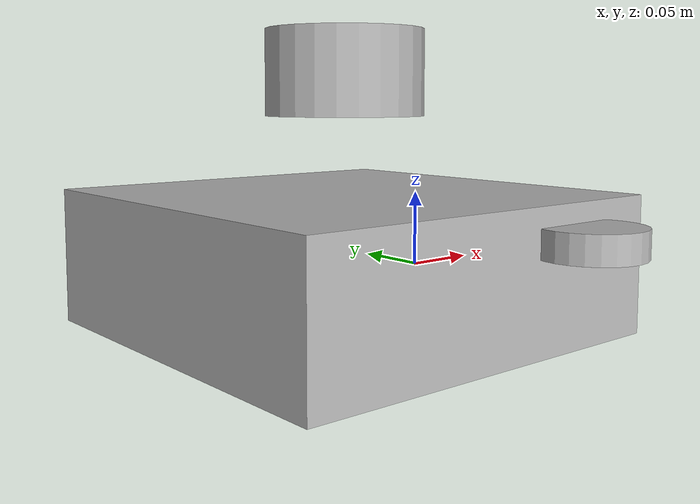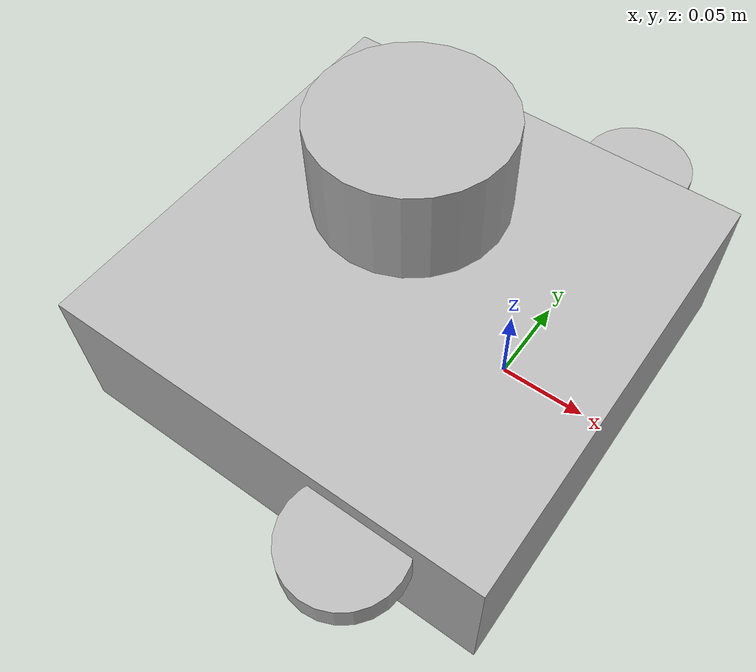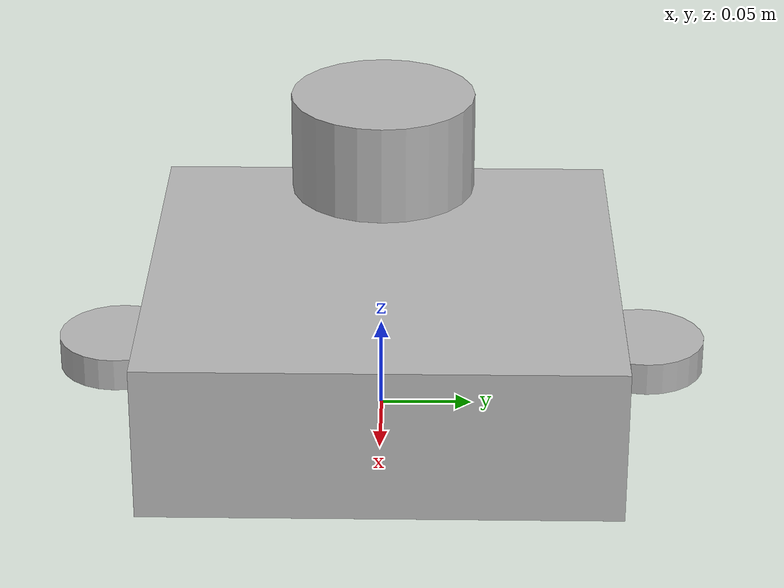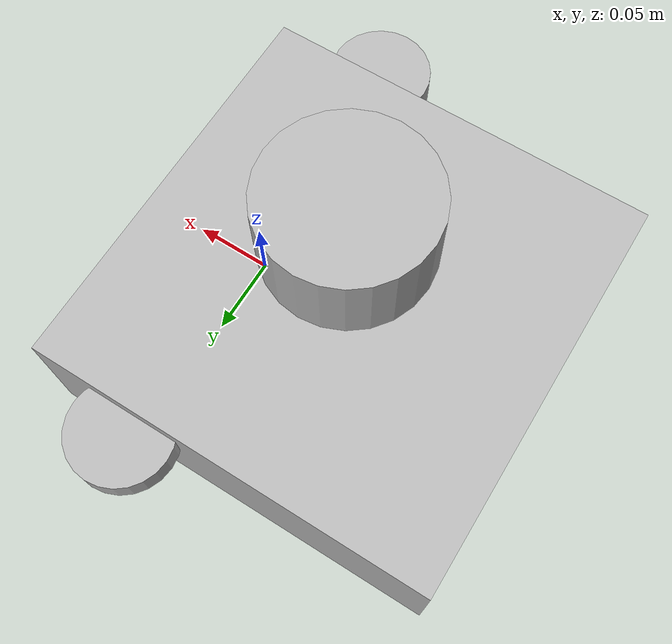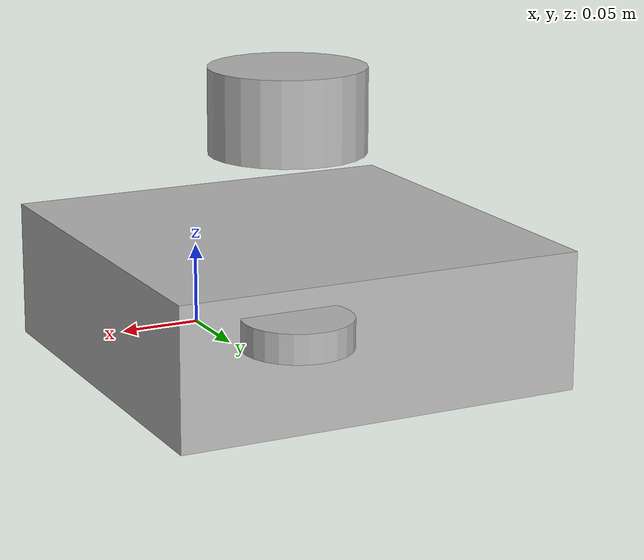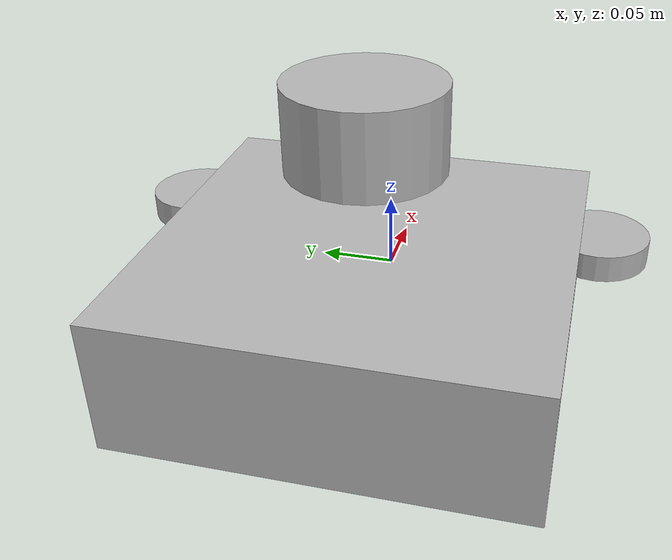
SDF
<?xml version="1.0"?>
<sdf version="1.6">

    <!-- ____________________ROBOT MODEL____________________ -->

    <model name="robot">
      <pose>0.0 0.0 0.01 0.0 0.0 0.0</pose>

      <link name="base_footprint"/>

      <!-- ____________MODEL LINKS___________ -->

      <!-- BASE LINK -->
      <link name="base_link">

        <inertial>
          <pose>-0.064 0 0.048 0 0 0</pose>
          <inertia>
            <ixx>0.001</ixx>
            <ixy>0.000</ixy>
            <ixz>0.000</ixz>
            <iyy>0.001</iyy>
            <iyz>0.000</iyz>
            <izz>0.001</izz>
          </inertia>
          <mass>1.0</mass>
        </inertial>

        <collision name="base_collision">
          <pose>-0.064 0 0.048 0 0 0</pose>
          <geometry>
            <box>
              <size>0.265 0.265 0.089</size>
            </box>
          </geometry>
        </collision>

        <visual name="base_visual">
          <pose>-0.064 0 0 0 0 0</pose>
          <geometry>
            <box>
              <size>0.265 0.265 0.089</size>
            </box>
          </geometry>
        </visual>
      </link>

      <!-- IMU LINK -->
      <link name="imu_link">
        <sensor name="robot_imu" type="imu">
          <always_on>true</always_on>
          <update_rate>200</update_rate>
          <imu>
            <angular_velocity>
              <x>
                <noise type="gaussian">
                  <mean>0.0</mean>
                  <stddev>2e-4</stddev>
                </noise>
              </x>
              <y>
                <noise type="gaussian">
                  <mean>0.0</mean>
                  <stddev>2e-4</stddev>
                </noise>
              </y>
              <z>
                <noise type="gaussian">
                  <mean>0.0</mean>
                  <stddev>2e-4</stddev>
                </noise>
              </z>
            </angular_velocity>
            <linear_acceleration>
              <x>
                <noise type="gaussian">
                  <mean>0.0</mean>
                  <stddev>1.7e-2</stddev>
                </noise>
              </x>
              <y>
                <noise type="gaussian">
                  <mean>0.0</mean>
                  <stddev>1.7e-2</stddev>
                </noise>
              </y>
              <z>
                <noise type="gaussian">
                  <mean>0.0</mean>
                  <stddev>1.7e-2</stddev>
                </noise>
              </z>
            </linear_acceleration>
          </imu>
          <plugin name="imu" filename="libgazebo_ros_imu_sensor.so">
            <ros>
              <remapping>~/out:=imu</remapping>
            </ros>
          </plugin>
        </sensor>
      </link>

      <!-- LIDAR LINK -->
      <link name="base_scan">
        <inertial>
          <pose>-0.052 0 0.111 0 0 0</pose>
          <inertia>
            <ixx>0.001</ixx>
            <ixy>0.000</ixy>
            <ixz>0.000</ixz>
            <iyy>0.001</iyy>
            <iyz>0.000</iyz>
            <izz>0.001</izz>
          </inertia>
          <mass>0.125</mass>
        </inertial>

        <collision name="lidar_sensor_collision">
          <pose>-0.052 0 0.111 0 0 0</pose>
          <geometry>
            <cylinder>
              <radius>0.0508</radius>
              <length>0.055</length>
            </cylinder>
          </geometry>
        </collision>

        <visual name="lidar_sensor_visual">
          <pose>-0.064 0 0.121 0 0 0</pose>
          <geometry>
             <cylinder>
              <radius>0.0508</radius>
              <length>0.055</length>
            </cylinder>
          </geometry>
        </visual>

        <sensor name="hls_lfcd_lds" type="ray">
          <always_on>true</always_on>
          <visualize>true</visualize>
          <pose>-0.064 0 0.121 0 0 0</pose>
          <update_rate>5</update_rate>
          <ray>
            <scan>
              <horizontal>
                <samples>360</samples>
                <resolution>1.000000</resolution>
                <min_angle>0.000000</min_angle>
                <max_angle>6.280000</max_angle>
              </horizontal>
            </scan>
            <range>
              <min>0.120000</min>
              <max>3.5</max>
              <resolution>0.015000</resolution>
            </range>
            <noise>
              <type>gaussian</type>
              <mean>0.0</mean>
              <stddev>0.01</stddev>
            </noise>
          </ray>
          <plugin name="laserscan" filename="libgazebo_ros_ray_sensor.so">
            <ros>
                <remapping>~/out:=scan</remapping>
            </ros>
            <output_type>sensor_msgs/LaserScan</output_type>
            <frame_name>base_scan</frame_name>
          </plugin>
        </sensor>
      </link>

      <!-- LEFT WHEEL LINK -->

      <link name="wheel_left_link">

        <inertial>
          <pose>0.0 0.144 0.023 -1.57 0 0</pose>
          <inertia>
            <ixx>0.001</ixx>
            <ixy>0.000</ixy>
            <ixz>0.000</ixz>
            <iyy>0.001</iyy>
            <iyz>0.000</iyz>
            <izz>0.001</izz>
          </inertia>
          <mass>0.1</mass>
        </inertial>

        <collision name="wheel_left_collision">
          <pose>0.0 0.144 0.023 -1.57 0 0</pose>
          <geometry>
            <cylinder>
              <radius>0.033</radius>
              <length>0.018</length>
            </cylinder>
          </geometry>
          <surface>
            <!-- This friction pamareter don't contain reliable data!! -->
            <friction>
              <ode>
                <mu>100000.0</mu>
                <mu2>100000.0</mu2>
                <fdir1>0 0 0</fdir1>
                <slip1>0.0</slip1>
                <slip2>0.0</slip2>
              </ode>
            </friction>
            <contact>
              <ode>
                <soft_cfm>0</soft_cfm>
                <soft_erp>0.2</soft_erp>
                <kp>1e+5</kp>
                <kd>1</kd>
                <max_vel>0.01</max_vel>
                <min_depth>0.001</min_depth>
              </ode>
            </contact>
          </surface>
        </collision>

        <visual name="wheel_left_visual">
          <pose>0.0 0.144 0.023 0 0 0</pose>
          <geometry>
            <cylinder>
              <radius>0.033</radius>
              <length>0.018</length>
            </cylinder>
          </geometry>
        </visual>
      </link>

      <!-- RIGHT WHEEL LINK -->

      <link name="wheel_right_link">

        <inertial>
          <pose>0.0 -0.144 0.023 -1.57 0 0</pose>
          <inertia>
            <ixx>0.001</ixx>
            <ixy>0.000</ixy>
            <ixz>0.000</ixz>
            <iyy>0.001</iyy>
            <iyz>0.000</iyz>
            <izz>0.001</izz>
          </inertia>
          <mass>0.1</mass>
        </inertial>

        <collision name="wheel_right_collision">
          <pose>0.0 -0.144 0.023 -1.57 0 0</pose>
          <geometry>
            <cylinder>
              <radius>0.033</radius>
              <length>0.018</length>
            </cylinder>
          </geometry>
          <surface>
            <!-- This friction pamareter don't contain reliable data!! -->
            <friction>
              <ode>
                <mu>100000.0</mu>
                <mu2>100000.0</mu2>
                <fdir1>0 0 0</fdir1>
                <slip1>0.0</slip1>
                <slip2>0.0</slip2>
              </ode>
            </friction>
            <contact>
              <ode>
                <soft_cfm>0</soft_cfm>
                <soft_erp>0.2</soft_erp>
                <kp>1e+5</kp>
                <kd>1</kd>
                <max_vel>0.01</max_vel>
                <min_depth>0.001</min_depth>
              </ode>
            </contact>
          </surface>
        </collision>

        <visual name="wheel_right_visual">
          <pose>0.0 -0.144 0.023 0 0 0</pose>
          <geometry>
            <cylinder>
              <radius>0.033</radius>
              <length>0.018</length>
            </cylinder>
          </geometry>
        </visual>
      </link>

      <!-- CASTER BACK LEFT LINK -->

      <link name='caster_back_left_link'>
        <pose>-0.177 0.064 -0.004 0 0 0</pose>
        <inertial>
          <mass>0.001</mass>
          <inertia>
            <ixx>0.00001</ixx>
            <ixy>0.000</ixy>
            <ixz>0.000</ixz>
            <iyy>0.00001</iyy>
            <iyz>0.000</iyz>
            <izz>0.00001</izz>
          </inertia>
        </inertial>
        <collision name='collision'>
          <geometry>
            <sphere>
              <radius>0.005000</radius>
            </sphere>
          </geometry>
          <surface>
            <contact>
              <ode>
                <soft_cfm>0</soft_cfm>
                <soft_erp>0.2</soft_erp>
                <kp>1e+5</kp>
                <kd>1</kd>
                <max_vel>0.01</max_vel>
                <min_depth>0.001</min_depth>
              </ode>
            </contact>
          </surface>
        </collision>
      </link>

      <!-- CAMERA LINK -->

      <link name="camera_link">
        <inertial>
          <pose>0.069 -0.047 0.107 0 0 0</pose>
          <inertia>
            <ixx>0.001</ixx>
            <ixy>0.000</ixy>
            <ixz>0.000</ixz>
            <iyy>0.001</iyy>
            <iyz>0.000</iyz>
            <izz>0.001</izz>
          </inertia>
          <mass>0.035</mass>
        </inertial>
        <collision name="collision">
          <pose>0 0.047 -0.005 0 0 0</pose>
          <geometry>
            <box>
              <size>0.008 0.130 0.022</size>
            </box>
          </geometry>
        </collision>

        <pose>0.069 -0.047 0.107 0 0 0</pose>

        <sensor name="intel_realsense_r200_depth" type="depth">
          <always_on>1</always_on>
          <update_rate>5</update_rate>
          <pose>0.064 -0.047 0.107 0 0 0</pose>
          <camera name="realsense_depth_camera">
          </camera>
          <plugin name="intel_realsense_r200_depth_driver" filename="libgazebo_ros_camera.so">
            <ros>
            </ros>
            <camera_name>intel_realsense_r200_depth</camera_name>
            <frame_name>camera_depth_frame</frame_name>
            <hack_baseline>0.07</hack_baseline>
            <min_depth>0.001</min_depth>
            <max_depth>5.0</max_depth>
          </plugin>
        </sensor>

        <collision name="collision">
          <pose>0 0.047 -0.005 0 0 0</pose>
          <geometry>
            <box>
              <size>0.008 0.130 0.022</size>
            </box>
          </geometry>
        </collision>
        <pose>0.069 -0.047 0.107 0 0 0</pose>
      </link>

      <!-- ___________MODEL JOINTS___________ -->

      <joint name="base_joint" type="fixed">
        <parent>base_footprint</parent>
        <child>base_link</child>
        <pose>0.0 0.0 0.010 0 0 0</pose>
      </joint>

      <joint name="wheel_left_joint" type="revolute">
        <parent>base_link</parent>
        <child>wheel_left_link</child>
        <pose>0.0 0.144 0.023 -1.57 0 0</pose>
        <axis>
          <xyz>0 0 1</xyz>
        </axis>
      </joint>

      <joint name="wheel_right_joint" type="revolute">
        <parent>base_link</parent>
        <child>wheel_right_link</child>
        <pose>0.0 -0.144 0.023 -1.57 0 0</pose>
        <axis>
          <xyz>0 0 1</xyz>
        </axis>
      </joint>

      <joint name='caster_back_right_joint' type='ball'>
        <parent>base_link</parent>
        <child>caster_back_right_link</child>
      </joint>

      <joint name='caster_back_left_joint' type='ball'>
        <parent>base_link</parent>
        <child>caster_back_left_link</child>
      </joint>

      <joint name="lidar_joint" type="fixed">
        <parent>base_link</parent>
        <child>base_scan</child>
        <pose>-0.064 0 0.121 0 0 0</pose>
        <axis>
          <xyz>0 0 1</xyz>
        </axis>
      </joint>

      <joint name="camera_joint" type="fixed">
        <parent>base_link</parent>
        <child>camera_link</child>
        <pose>0.064 -0.065 0.094 0 0 0</pose>
        <axis>
          <xyz>0 0 1</xyz>
        </axis>
      </joint>

      <joint name="camera_rgb_joint" type="fixed">
        <parent>camera_link</parent>
        <child>camera_rgb_frame</child>
        <pose>0.005 0.018 0.013 0 0 0</pose>
        <axis>
          <xyz>0 0 1</xyz>
        </axis>
      </joint>

      <!-- __________MODEL PLUGINS___________ -->

      <plugin name="diff_drive" filename="libgazebo_ros_diff_drive.so">

        <ros>
        </ros>

        <update_rate>30</update_rate>

        <!-- wheels -->
        <left_joint>wheel_left_joint</left_joint>
        <right_joint>wheel_right_joint</right_joint>

        <!-- kinematics -->
        <wheel_separation>0.287</wheel_separation>
        <wheel_diameter>0.066</wheel_diameter>

        <!-- limits -->
        <max_wheel_torque>20</max_wheel_torque>
        <max_wheel_acceleration>1.0</max_wheel_acceleration>

        <command_topic>cmd_vel</command_topic>

        <!-- output -->
        <publish_odom>true</publish_odom>
        <publish_odom_tf>true</publish_odom_tf>
        <publish_wheel_tf>false</publish_wheel_tf>

        <odometry_topic>odom</odometry_topic>
        <odometry_frame>odom</odometry_frame>
        <robot_base_frame>base_footprint</robot_base_frame>

      </plugin>

      <plugin name="joint_state" filename="libgazebo_ros_joint_state_publisher.so">
        <ros>
            <remapping>~/out:=joint_states</remapping>
        </ros>
        <update_rate>30</update_rate>
        <joint_name>wheel_left_joint</joint_name>
        <joint_name>wheel_right_joint</joint_name>
      </plugin>
    </model>
</sdf>
